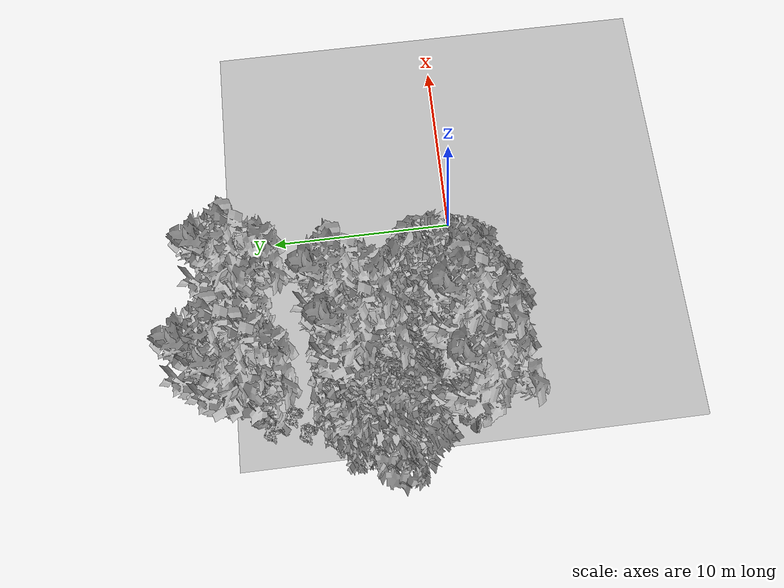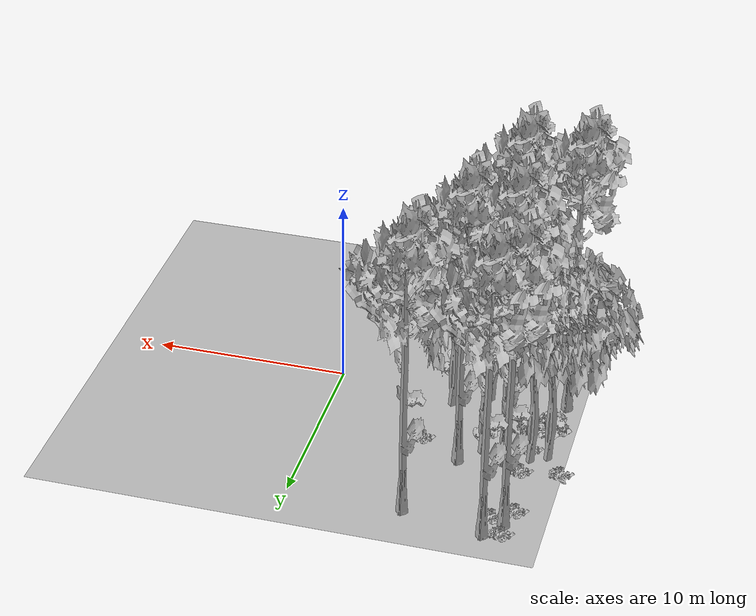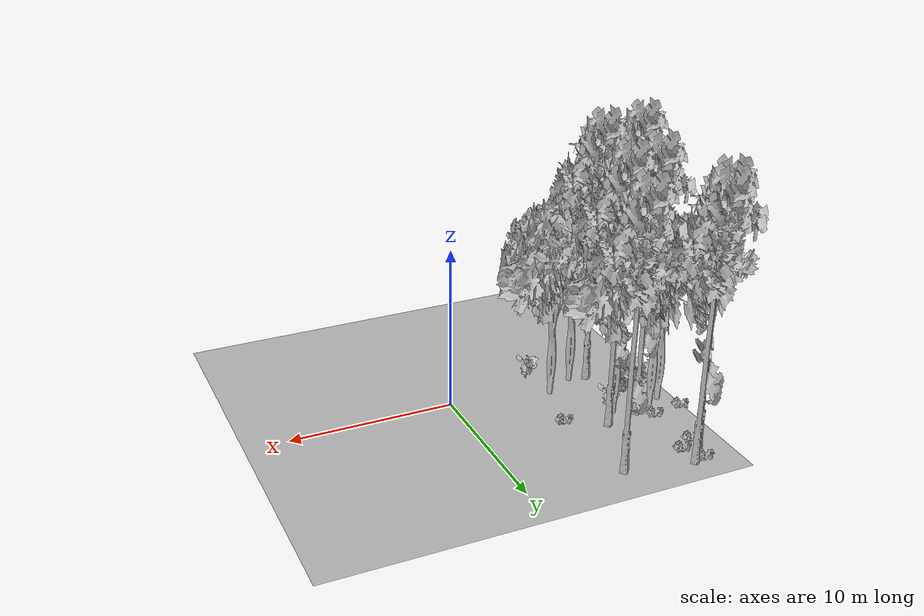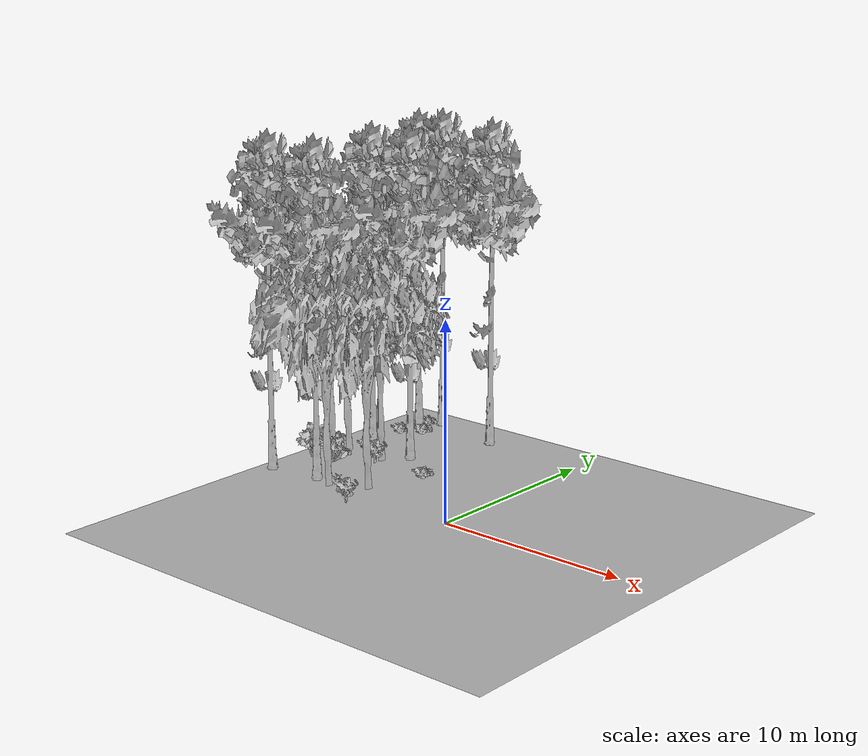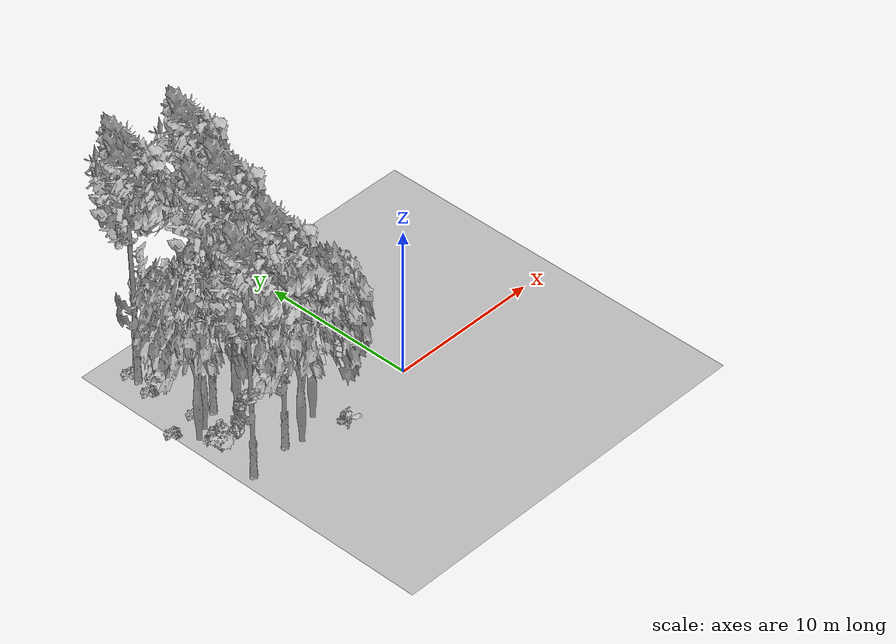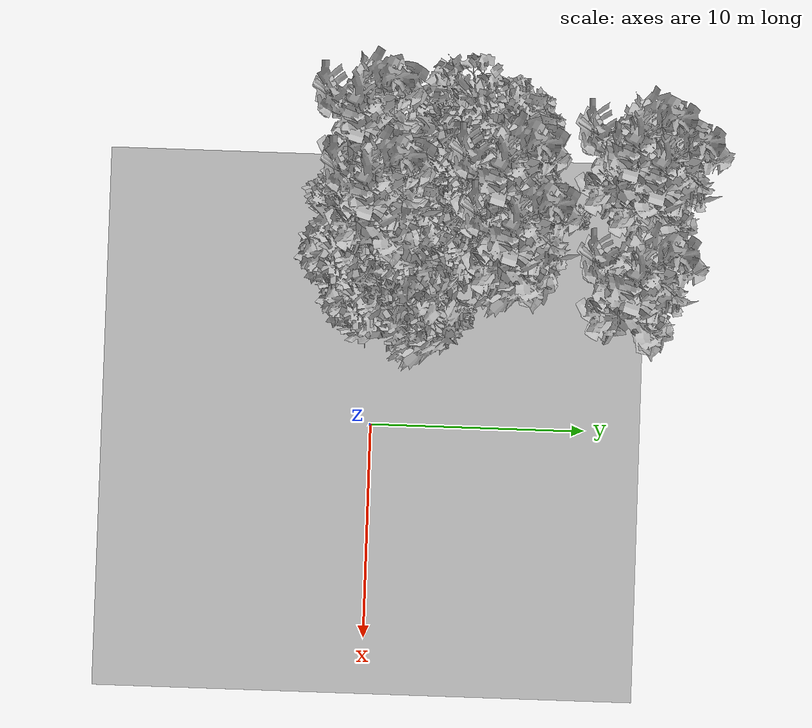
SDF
<sdf version="1.7">
 <world name="default">
  <model name="ground_plane">
   <static>1</static>
   <link name="link">
    <collision name="collision">
     <pose>-50 0 0 0 -0 0</pose>
     <geometry><plane><normal>0 0 1</normal><size>80 80</size></plane></geometry>
     <surface><contact><ode><min_depth>0.01</min_depth><max_vel>0</max_vel></ode></contact></surface>
    </collision>
    <visual name="grass">
     <cast_shadows>0</cast_shadows>
     <geometry>
      <mesh>
       <scale>0.46714285714285714 0.46714285714285714 0.1</scale>
       <uri>file://grass_plane/meshes/grass_plane.dae</uri>
      </mesh>
     </geometry>
    </visual>
   </link>
  </model>
  <model name="Tree 140">
   <static>1</static>
   <pose>-8.512353156301728 4.580281907176328 0 1.57079 -0 0</pose>
   <link name="link">
    <collision name="collision">
     <geometry><mesh><scale>3.5 5 3.5</scale><uri>model://tree_2/meshes/tree_2.obj</uri></mesh></geometry>
    </collision>
    <visual name="visual">
     <geometry><mesh><scale>3.5 5 3.5</scale><uri>model://tree_2/meshes/tree_2.obj</uri></mesh></geometry>
    </visual>
   </link>
  </model>
  <model name="Tree 156">
   <static>1</static>
   <pose>-7.437850522372354 5.751399060735736 0 1.57079 -0 0</pose>
   <link name="link">
    <collision name="collision">
     <geometry><mesh><scale>3.5 5 3.5</scale><uri>model://tree_9/meshes/tree_9.obj</uri></mesh></geometry>
    </collision>
    <visual name="visual">
     <geometry><mesh><scale>3.5 5 3.5</scale><uri>model://tree_9/meshes/tree_9.obj</uri></mesh></geometry>
    </visual>
   </link>
  </model>
  <model name="Tree 157">
   <static>1</static>
   <pose>-7.990082080127912 0.10406849024193576 0 1.57079 -0 0</pose>
   <link name="link">
    <collision name="collision">
     <geometry><mesh><scale>3.5 5 3.5</scale><uri>model://tree_2/meshes/tree_2.obj</uri></mesh></geometry>
    </collision>
    <visual name="visual">
     <geometry><mesh><scale>3.5 5 3.5</scale><uri>model://tree_2/meshes/tree_2.obj</uri></mesh></geometry>
    </visual>
   </link>
  </model>
  <model name="Tree 202">
   <static>1</static>
   <pose>-6.168224485443439 1.063814297072824 0 1.57079 -0 0</pose>
   <link name="link">
    <collision name="collision">
     <geometry><mesh><scale>3.5 5 3.5</scale><uri>model://tree_2/meshes/tree_2.obj</uri></mesh></geometry>
    </collision>
    <visual name="visual">
     <geometry><mesh><scale>3.5 5 3.5</scale><uri>model://tree_2/meshes/tree_2.obj</uri></mesh></geometry>
    </visual>
   </link>
  </model>
  <model name="Tree 276">
   <static>1</static>
   <pose>-9.848779559734798 11.073708522702404 0 1.57079 -0 0</pose>
   <link name="link">
    <collision name="collision">
     <geometry><mesh><scale>3.5 5 3.5</scale><uri>model://tree_9/meshes/tree_9.obj</uri></mesh></geometry>
    </collision>
    <visual name="visual">
     <geometry><mesh><scale>3.5 5 3.5</scale><uri>model://tree_9/meshes/tree_9.obj</uri></mesh></geometry>
    </visual>
   </link>
  </model>
  <model name="Tree 317">
   <static>1</static>
   <pose>-10.681885843292797 10.082776518583074 0 1.57079 -0 0</pose>
   <link name="link">
    <collision name="collision">
     <geometry><mesh><scale>3.5 5 3.5</scale><uri>model://tree_9/meshes/tree_9.obj</uri></mesh></geometry>
    </collision>
    <visual name="visual">
     <geometry><mesh><scale>3.5 5 3.5</scale><uri>model://tree_9/meshes/tree_9.obj</uri></mesh></geometry>
    </visual>
   </link>
  </model>
  <model name="Tree 353">
   <static>1</static>
   <pose>-10.95594879411206 4.674484045758611 0 1.57079 -0 0</pose>
   <link name="link">
    <collision name="collision">
     <geometry><mesh><scale>3.5 5 3.5</scale><uri>model://tree_2/meshes/tree_2.obj</uri></mesh></geometry>
    </collision>
    <visual name="visual">
     <geometry><mesh><scale>3.5 5 3.5</scale><uri>model://tree_2/meshes/tree_2.obj</uri></mesh></geometry>
    </visual>
   </link>
  </model>
  <model name="Tree 383">
   <static>1</static>
   <pose>-11.761509622029344 4.260444396769358 0 1.57079 -0 0</pose>
   <link name="link">
    <collision name="collision">
     <geometry><mesh><scale>3.5 5 3.5</scale><uri>model://tree_2/meshes/tree_2.obj</uri></mesh></geometry>
    </collision>
    <visual name="visual">
     <geometry><mesh><scale>3.5 5 3.5</scale><uri>model://tree_2/meshes/tree_2.obj</uri></mesh></geometry>
    </visual>
   </link>
  </model>
  <model name="Tree 393">
   <static>1</static>
   <pose>-5.781831651014272 10.285085488249294 0 1.57079 -0 0</pose>
   <link name="link">
    <collision name="collision">
     <geometry><mesh><scale>3.5 5 3.5</scale><uri>model://tree_9/meshes/tree_9.obj</uri></mesh></geometry>
    </collision>
    <visual name="visual">
     <geometry><mesh><scale>3.5 5 3.5</scale><uri>model://tree_9/meshes/tree_9.obj</uri></mesh></geometry>
    </visual>
   </link>
  </model>
  <model name="Tree 434">
   <static>1</static>
   <pose>-8.951867588473032 0.37786820898796236 0 1.57079 -0 0</pose>
   <link name="link">
    <collision name="collision">
     <geometry><mesh><scale>3.5 5 3.5</scale><uri>model://tree_9/meshes/tree_9.obj</uri></mesh></geometry>
    </collision>
    <visual name="visual">
     <geometry><mesh><scale>3.5 5 3.5</scale><uri>model://tree_9/meshes/tree_9.obj</uri></mesh></geometry>
    </visual>
   </link>
  </model>
  <model name="Tree 441">
   <static>1</static>
   <pose>-11.781423995723067 -0.024170787694288265 0 1.57079 -0 0</pose>
   <link name="link">
    <collision name="collision">
     <geometry><mesh><scale>3.5 5 3.5</scale><uri>model://tree_9/meshes/tree_9.obj</uri></mesh></geometry>
    </collision>
    <visual name="visual">
     <geometry><mesh><scale>3.5 5 3.5</scale><uri>model://tree_9/meshes/tree_9.obj</uri></mesh></geometry>
    </visual>
   </link>
  </model>
  <model name="Tree 520">
   <static>1</static>
   <pose>-9.620499181723883 5.253416528368071 0 1.57079 -0 0</pose>
   <link name="link">
    <collision name="collision">
     <geometry><mesh><scale>3.5 5 3.5</scale><uri>model://tree_9/meshes/tree_9.obj</uri></mesh></geometry>
    </collision>
    <visual name="visual">
     <geometry><mesh><scale>3.5 5 3.5</scale><uri>model://tree_9/meshes/tree_9.obj</uri></mesh></geometry>
    </visual>
   </link>
  </model>
  <model name="Bush 13">
   <static>1</static>
   <pose>-8.371249809104455 4.043421777259681 0 1.57079 -0 0</pose>
   <link name="link">
    <collision name="collision">
     <geometry><mesh><scale>2 2 2</scale><uri>model://bush_0/meshes/bush_0.obj</uri></mesh></geometry>
     <surface><contact><collide_without_contact>false</collide_without_contact></contact></surface>
    </collision>
    <visual name="visual">
     <geometry><mesh><scale>2 2 2</scale><uri>model://bush_0/meshes/bush_0.obj</uri></mesh></geometry>
    </visual>
   </link>
  </model>
  <model name="Bush 25">
   <static>1</static>
   <pose>-5.307601094428698 4.314708834555546 0 1.57079 -0 0</pose>
   <link name="link">
    <collision name="collision">
     <geometry><mesh><scale>2 2 2</scale><uri>model://bush_2/meshes/bush_2.obj</uri></mesh></geometry>
     <surface><contact><collide_without_contact>false</collide_without_contact></contact></surface>
    </collision>
    <visual name="visual">
     <geometry><mesh><scale>2 2 2</scale><uri>model://bush_2/meshes/bush_2.obj</uri></mesh></geometry>
    </visual>
   </link>
  </model>
  <model name="Bush 35">
   <static>1</static>
   <pose>-9.990758873080186 9.57353960386122 0 1.57079 -0 0</pose>
   <link name="link">
    <collision name="collision">
     <geometry><mesh><scale>2 2 2</scale><uri>model://bush_2/meshes/bush_2.obj</uri></mesh></geometry>
     <surface><contact><collide_without_contact>false</collide_without_contact></contact></surface>
    </collision>
    <visual name="visual">
     <geometry><mesh><scale>2 2 2</scale><uri>model://bush_2/meshes/bush_2.obj</uri></mesh></geometry>
    </visual>
   </link>
  </model>
  <model name="Bush 138">
   <static>1</static>
   <pose>-10.567320095528778 5.750815333506068 0 1.57079 -0 0</pose>
   <link name="link">
    <collision name="collision">
     <geometry><mesh><scale>2 2 2</scale><uri>model://bush_2/meshes/bush_2.obj</uri></mesh></geometry>
     <surface><contact><collide_without_contact>false</collide_without_contact></contact></surface>
    </collision>
    <visual name="visual">
     <geometry><mesh><scale>2 2 2</scale><uri>model://bush_2/meshes/bush_2.obj</uri></mesh></geometry>
    </visual>
   </link>
  </model>
  <model name="Bush 398">
   <static>1</static>
   <pose>-10.993344432369543 8.875631965583509 0 1.57079 -0 0</pose>
   <link name="link">
    <collision name="collision">
     <geometry><mesh><scale>2 2 2</scale><uri>model://bush_2/meshes/bush_2.obj</uri></mesh></geometry>
     <surface><contact><collide_without_contact>false</collide_without_contact></contact></surface>
    </collision>
    <visual name="visual">
     <geometry><mesh><scale>2 2 2</scale><uri>model://bush_2/meshes/bush_2.obj</uri></mesh></geometry>
    </visual>
   </link>
  </model>
  <model name="Bush 509">
   <static>1</static>
   <pose>-10.69330148978414 10.744005189057411 0 1.57079 -0 0</pose>
   <link name="link">
    <collision name="collision">
     <geometry><mesh><scale>2 2 2</scale><uri>model://bush_2/meshes/bush_2.obj</uri></mesh></geometry>
     <surface><contact><collide_without_contact>false</collide_without_contact></contact></surface>
    </collision>
    <visual name="visual">
     <geometry><mesh><scale>2 2 2</scale><uri>model://bush_2/meshes/bush_2.obj</uri></mesh></geometry>
    </visual>
   </link>
  </model>
  <model name="Bush 536">
   <static>1</static>
   <pose>-5.528924693169088 -1.0913586673014848 0 1.57079 -0 0</pose>
   <link name="link">
    <collision name="collision">
     <geometry><mesh><scale>2 2 2</scale><uri>model://bush_0/meshes/bush_0.obj</uri></mesh></geometry>
     <surface><contact><collide_without_contact>false</collide_without_contact></contact></surface>
    </collision>
    <visual name="visual">
     <geometry><mesh><scale>2 2 2</scale><uri>model://bush_0/meshes/bush_0.obj</uri></mesh></geometry>
    </visual>
   </link>
  </model>
  <model name="Bush 583">
   <static>1</static>
   <pose>-11.586000902839416 2.598840847448699 0 1.57079 -0 0</pose>
   <link name="link">
    <collision name="collision">
     <geometry><mesh><scale>2 2 2</scale><uri>model://bush_1/meshes/bush_1.obj</uri></mesh></geometry>
     <surface><contact><collide_without_contact>false</collide_without_contact></contact></surface>
    </collision>
    <visual name="visual">
     <geometry><mesh><scale>2 2 2</scale><uri>model://bush_1/meshes/bush_1.obj</uri></mesh></geometry>
    </visual>
   </link>
  </model>
  <model name="Bush 603">
   <static>1</static>
   <pose>-10.224398341784962 2.78125403178926 0 1.57079 -0 0</pose>
   <link name="link">
    <collision name="collision">
     <geometry><mesh><scale>2 2 2</scale><uri>model://bush_4/meshes/bush_4.obj</uri></mesh></geometry>
     <surface><contact><collide_without_contact>false</collide_without_contact></contact></surface>
    </collision>
    <visual name="visual">
     <geometry><mesh><scale>2 2 2</scale><uri>model://bush_4/meshes/bush_4.obj</uri></mesh></geometry>
    </visual>
   </link>
  </model>
  <model name="Bush 626">
   <static>1</static>
   <pose>-12.522953136535659 5.475208949036912 0 1.57079 -0 0</pose>
   <link name="link">
    <collision name="collision">
     <geometry><mesh><scale>2 2 2</scale><uri>model://bush_2/meshes/bush_2.obj</uri></mesh></geometry>
     <surface><contact><collide_without_contact>false</collide_without_contact></contact></surface>
    </collision>
    <visual name="visual">
     <geometry><mesh><scale>2 2 2</scale><uri>model://bush_2/meshes/bush_2.obj</uri></mesh></geometry>
    </visual>
   </link>
  </model>
  <model name="Bush 635">
   <static>1</static>
   <pose>-10.691974146714507 3.869489680537953 0 1.57079 -0 0</pose>
   <link name="link">
    <collision name="collision">
     <geometry><mesh><scale>2 2 2</scale><uri>model://bush_2/meshes/bush_2.obj</uri></mesh></geometry>
     <surface><contact><collide_without_contact>false</collide_without_contact></contact></surface>
    </collision>
    <visual name="visual">
     <geometry><mesh><scale>2 2 2</scale><uri>model://bush_2/meshes/bush_2.obj</uri></mesh></geometry>
    </visual>
   </link>
  </model>
 </world>
</sdf>
